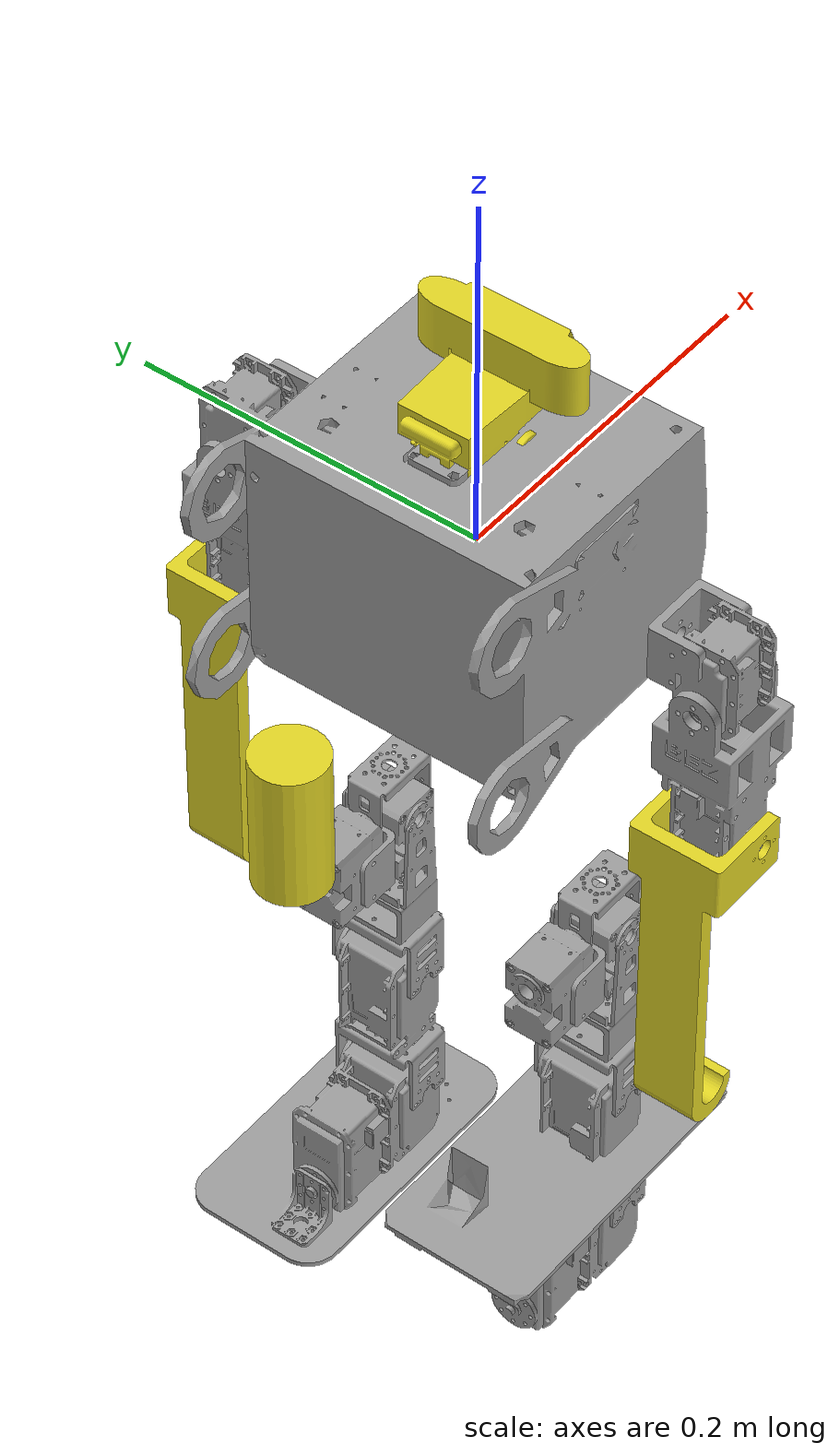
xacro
<?xml version="1.0" ?>
<robot name="bez2" xmlns:xacro="http://www.ros.org/wiki/xacro">
<xacro:include filename="$(find bez2_description)/urdf/parameters.xacro" />
<xacro:include filename="$(find bez2_description)/urdf/materials.xacro" />
<xacro:include filename="$(find bez2_description)/urdf/bez2.trans" />
<xacro:include filename="$(find bez2_description)/urdf/bez2.gazebo" />
<link name="torso">
  <inertial>
    <origin xyz="-2.6182166493521018e-05 0.0037391632790891283 -0.07310917852477573" rpy="0 0 0"/>
    <mass value="1.62191101903404"/>
    <inertia ixx="0.17522" iyy="0.126523" izz="0.127074" ixy="0.000499" iyz="0.000833" ixz="0.001818"/>
  </inertial>
  <visual>
    <origin xyz="0 0 0" rpy="0 0 0"/>
    <geometry>
      <mesh filename="package://bez2_description/meshes/base_link.stl" scale="0.001 0.001 0.001"/>
    </geometry>
    <material name="steel_satin"/>
  </visual>
  <collision name="collision">
      <origin rpy="0.00000 0.00000 0.00000" xyz="0.00154 0.00254 -0.07057"/>
      <geometry>
        <box size="0.14440 0.20843 0.19912"/>
      </geometry>
  </collision>
</link>
<link name="neck">
  <inertial>
    <origin xyz="2.1597541578072255e-08 -0.005416430173761932 0.014254502404740514" rpy="0 0 0"/>
    <mass value="0.015549664333897642"/>
    <inertia ixx="8e-06" iyy="3e-06" izz="6e-06" ixy="0.0" iyz="1e-06" ixz="-0.0"/>
  </inertial>
  <visual>
    <origin xyz="-0.009539 -0.002537 -0.03138" rpy="0 0 0"/>
    <geometry>
      <mesh filename="package://bez2_description/meshes/Head_Yaw_Assembly_v1_1.stl" scale="0.001 0.001 0.001"/>
    </geometry>
    <material name="plastic_matte_yellow"/>
  </visual>
  <collision>
    <origin rpy="0.00000 0.00000 0.00000" xyz="0.00000 0.00000 0.01900"/>
      <geometry>
        <box size="0.02200 0.05100 0.03800"/>
      </geometry>
  </collision>
</link>
<link name="head">
  <inertial>
    <origin xyz="-0.006768609392929565 0.018593066407664022 0.012723039586287177" rpy="0 0 0"/>
    <mass value="0.5407373847724953"/>
    <inertia ixx="0.000349" iyy="0.000378" izz="0.000259" ixy="-0.0" iyz="-4e-06" ixz="-8.1e-05"/>
  </inertial>
  <visual>
    <origin xyz="-0.009539 0.016963 -0.05638" rpy="0 0 0"/>
    <geometry>
      <mesh filename="package://bez2_description/meshes/Head_Pitch_Assembly_v4_1.stl" scale="0.001 0.001 0.001"/>
    </geometry>
    <material name="plastic_matte_yellow"/>
  </visual>
  <collision>
    <origin rpy="0.00000 0.00000 0.00000" xyz="-0.00950 0.01920 0.02340"/>
      <geometry>
        <box size="0.07120 0.09400 0.07530"/>
      </geometry>
  </collision>
</link>
<link name="left_shoulder">
  <inertial>
    <origin xyz="9.49688693072442e-05 0.025391120875814188 -0.00710009103373208" rpy="0 0 0"/>
    <mass value="0.172653501389095"/>
    <inertia ixx="0.000136" iyy="0.000137" izz="0.000116" ixy="0.0" iyz="1.8e-05" ixz="3e-06"/>
  </inertial>
  <visual>
    <origin xyz="-0.006539 -0.112237 0.00062" rpy="0 0 0"/>
    <geometry>
      <mesh filename="package://bez2_description/meshes/left_shoulder_v1_1.stl" scale="0.001 0.001 0.001"/>
    </geometry>
    <material name="steel_satin"/>
  </visual>
  <collision>
    <origin rpy="0.00000 0.00000 0.00000" xyz="0.00155 0.02365 -0.00750"/>
      <geometry>
        <box size="0.04360 0.04730 0.05100"/>
      </geometry>
  </collision>
</link>
<link name="left_bicep">
  <inertial>
    <origin xyz="-0.01931620093381984 0.0008375708488899958 -0.05229697639295136" rpy="0 0 0"/>
    <mass value="0.212120407883451"/>
    <inertia ixx="0.000601" iyy="0.000616" izz="0.000236" ixy="-0.0" iyz="1.3e-05" ixz="9e-06"/>
  </inertial>
  <visual>
    <origin xyz="-0.027039 -0.141737 0.02162" rpy="0 0 0"/>
    <geometry>
      <mesh filename="package://bez2_description/meshes/bicep_v1_1.stl" scale="0.001 0.001 0.001"/>
    </geometry>
    <material name="steel_satin"/>
  </visual>
  <collision>
    <origin rpy="0.00000 0.00000 0.00000" xyz="-0.02000 0.00127 -0.04274"/>
      <geometry>
        <box size="0.05000 0.04703 0.11202"/>
      </geometry>
  </collision>
</link>
<link name="left_forearm">
  <inertial>
    <origin xyz="-0.02629981291315407 -0.02054181327377705 -0.07127075071519198" rpy="0 0 0"/>
    <mass value="0.06415483406403591"/>
    <inertia ixx="0.000265" iyy="0.00026" izz="2e-05" ixy="-0.0" iyz="-0.0" ixz="-7e-06"/>
  </inertial>
  <visual>
    <origin xyz="-0.008351 -0.163675 0.10837" rpy="0 0 0"/>
    <geometry>
      <mesh filename="package://bez2_description/meshes/Bez1_forearm_v7_1.stl" scale="0.001 0.001 0.001"/>
    </geometry>
    <material name="plastic_matte_yellow"/>
  </visual>
  <collision>
    <origin rpy="0.00000 0.00000 0.00000" xyz="-0.01200 -0.02050 -0.08119"/>
      <geometry>
        <box size="0.04800 0.05300 0.18838"/>
      </geometry>
  </collision>
</link>

<link name="left_hip_side">
  <inertial>
    <origin xyz="2.104631423652248e-08 3.399354384647779e-07 -0.0077462434278427195" rpy="0 0 0"/>
    <mass value="0.120655957656288"/>
    <inertia ixx="3e-06" iyy="8e-06" izz="7e-06" ixy="-0.0" iyz="-0.0" ixz="0.0"/>
  </inertial>
  <visual>
    <origin xyz="-0.018839 -0.067737 0.20662" rpy="0 0 0"/>
    <geometry>
      <mesh filename="package://bez2_description/meshes/fr12_h101_v1_2.stl" scale="0.001 0.001 0.001"/>
    </geometry>
    <material name="steel_satin"/>
  </visual>
  <collision>
    <origin rpy="0.00000 0.00000 0.00000" xyz="0.00000 0.00000 -0.01525"/>
      <geometry>
        <box size="0.04100 0.02400 0.03050"/>
      </geometry>
  </collision>
</link>
<link name="left_hip_front">
<inertial>
  <origin xyz="0.0004996292549223533 0.0005421424160892835 -0.012131129108951588" rpy="0 0 0"/>
  <mass value="0.211645971103128"/>
  <inertia ixx="0.000195" iyy="0.000458" izz="0.000394" ixy="-8e-06" iyz="-1e-06" ixz="-2e-06"/>
</inertial>
<visual>
  <origin xyz="0.001661 -0.067737 0.23462" rpy="0 0 0"/>
  <geometry>
    <mesh filename="package://bez2_description/meshes/hip_v1_1.stl" scale="0.001 0.001 0.001"/>
  </geometry>
  <material name="steel_satin"/>
</visual>
<collision>
  <origin rpy="0.00000 0.00000 0.00000" xyz="-0.00199 0.00180 -0.01200"/>
      <geometry>
        <box size="0.07402 0.04100 0.04650"/>
      </geometry>
</collision>
</link>
<link name="left_thigh">
  <inertial>
    <origin xyz="2.1046150922715556e-08 -0.018793706652435974 -0.06540894904468947" rpy="0 0 0"/>
    <mass value="0.142301969468209"/>
    <inertia ixx="0.000159" iyy="0.000121" izz="6.9e-05" ixy="-0.0" iyz="1e-06" ixz="0.0"/>
  </inertial>
  <visual>
    <origin xyz="-0.01911 -0.088037 0.23462" rpy="0 0 0"/>
    <geometry>
      <mesh filename="package://bez2_description/meshes/thigh_v1_1.stl" scale="0.001 0.001 0.001"/>
    </geometry>
    <material name="steel_satin"/>
  </visual>
  <collision>
    <origin rpy="0.00000 0.00000 0.00000" xyz="0.00000 -0.01823 -0.05825"/>
      <geometry>
        <box size="0.03300 0.05100 0.12150"/>
      </geometry>
  </collision>
</link>
<link name="left_calve">
  <inertial>
    <origin xyz="0.00034959081321023905 -0.023268493362085793 -0.030853501915197812" rpy="0 0 0"/>
    <mass value="0.143723171211077"/>
    <inertia ixx="0.000176" iyy="0.00015" izz="6.2e-05" ixy="0.0" iyz="-2e-06" ixz="2e-06"/>
  </inertial>
  <visual>
    <origin xyz="-0.01911 -0.093306 0.35062" rpy="0 0 0"/>
    <geometry>
      <mesh filename="package://bez2_description/meshes/calf_v1_1.stl" scale="0.001 0.001 0.001"/>
    </geometry>
    <material name="steel_satin"/>
  </visual>
  <collision>
    <origin rpy="0.00000 0.00000 0.00000" xyz="-0.00005 -0.02225 -0.03850"/>
      <geometry>
        <box size="0.04030 0.05350 0.10500"/>
      </geometry>
  </collision>
</link>
<link name="left_ankle">
  <inertial>
    <origin xyz="-0.02065513049536576 -0.023057637545577894 -0.017838420955393897" rpy="0 0 0"/>
    <mass value="0.151468601936124"/>
    <inertia ixx="0.000102" iyy="0.000212" izz="0.000173" ixy="-1e-06" iyz="-2e-06" ixz="-1.7e-05"/>
  </inertial>
  <visual>
    <origin xyz="-0.02041 -0.093306 0.43862" rpy="0 0 0"/>
    <geometry>
      <mesh filename="package://bez2_description/meshes/ankle_v2_1.stl" scale="0.001 0.001 0.001"/>
    </geometry>
    <material name="steel_satin"/>
  </visual>
  <collision>
    <origin rpy="0.00000 0.00000 0.00000" xyz="-0.02445 -0.02050 -0.01800"/>
      <geometry>
        <box size="0.08910 0.05000 0.06398"/>
      </geometry>
  </collision>
</link>
<link name="left_foot">
  <inertial>
    <origin xyz="0.0476419808535605 0.018106431082562213 -0.01978200152059173" rpy="0 0 0"/>
    <mass value="0.16613521684361"/>
    <inertia ixx="0.000247" iyy="0.000905" izz="0.001142" ixy="-2.6e-05" iyz="5e-06" ixz="1.4e-05"/>
  </inertial>
  <visual>
    <origin xyz="0.04409 -0.069806 0.47462" rpy="0 0 0"/>
    <geometry>
      <mesh filename="package://bez2_description/meshes/left_foot_v2_1.stl" scale="0.001 0.001 0.001"/>
    </geometry>
    <material name="steel_satin"/>
  </visual>
  <collision>
    <origin rpy="0.00000 0.00000 0.00000" xyz="0.05150 0.01936 -0.00550"/>
      <geometry>
        <box size="0.17000 0.09000 0.03300"/>
      </geometry>
  </collision>
</link>

<link name="right_hip_side">
  <inertial>
    <origin xyz="2.1046314309380865e-08 3.3993543878396704e-07 -0.007746243427843552" rpy="0 0 0"/>
    <mass value="0.120655957656288"/>
    <inertia ixx="3e-06" iyy="8e-06" izz="7e-06" ixy="-0.0" iyz="-0.0" ixz="0.0"/>
  </inertial>
  <visual>
    <origin xyz="-0.018839 0.062663 0.20662" rpy="0 0 0"/>
    <geometry>
      <mesh filename="package://bez2_description/meshes/fr12_h101_v1_1.stl" scale="0.001 0.001 0.001"/>
    </geometry>
    <material name="steel_satin"/>
  </visual>
  <collision>
    <origin rpy="0.00000 0.00000 0.00000" xyz="0.00000 0.00000 -0.01525"/>
      <geometry>
        <box size="0.04100 0.02400 0.03050"/>
      </geometry>
  </collision>
</link>
<link name="right_hip_front">
  <inertial>
    <origin xyz="0.0004996292549223817 0.0005421424160894084 -0.01213112910895231" rpy="0 0 0"/>
    <mass value="0.211645971103128"/>
    <inertia ixx="0.000195" iyy="0.000458" izz="0.000394" ixy="-8e-06" iyz="-1e-06" ixz="-2e-06"/>
  </inertial>
  <visual>
    <origin xyz="0.001661 0.062663 0.23462" rpy="0 0 0"/>
    <geometry>
      <mesh filename="package://bez2_description/meshes/hip_v1_2.stl" scale="0.001 0.001 0.001"/>
    </geometry>
    <material name="steel_satin"/>
  </visual>
  <collision>
    <origin rpy="0.00000 0.00000 0.00000" xyz="-0.00199 0.00180 -0.01200"/>
      <geometry>
        <box size="0.07402 0.04100 0.04650"/>
      </geometry>
  </collision>
</link>
<link name="right_thigh">
  <inertial>
    <origin xyz="2.1046151002512836e-08 -0.018793706652437202 -0.0654089490446903" rpy="0 0 0"/>
    <mass value="0.142301969468209"/>
    <inertia ixx="0.000159" iyy="0.000121" izz="6.9e-05" ixy="-0.0" iyz="1e-06" ixz="0.0"/>
  </inertial>
  <visual>
    <origin xyz="-0.01911 0.042363 0.23462" rpy="0 0 0"/>
    <geometry>
      <mesh filename="package://bez2_description/meshes/thigh_v1_2.stl" scale="0.001 0.001 0.001"/>
    </geometry>
    <material name="steel_satin"/>
  </visual>
  <collision>
    <origin rpy="0.00000 0.00000 0.00000" xyz="0.00000 -0.01823 -0.05825"/>
      <geometry>
        <box size="0.03300 0.05100 0.12150"/>
      </geometry>
  </collision>
</link>
<link name="right_calve">
  <inertial>
    <origin xyz="0.0003495908132103466 -0.023268493362087077 -0.030853501915198367" rpy="0 0 0"/>
    <mass value="0.143723171211077"/>
    <inertia ixx="0.000176" iyy="0.00015" izz="6.2e-05" ixy="0.0" iyz="-2e-06" ixz="2e-06"/>
  </inertial>
  <visual>
    <origin xyz="-0.01911 0.037094 0.35062" rpy="0 0 0"/>
    <geometry>
      <mesh filename="package://bez2_description/meshes/calf_v1_2.stl" scale="0.001 0.001 0.001"/>
    </geometry>
    <material name="steel_satin"/>
  </visual>
  <collision>
    <origin rpy="0.00000 0.00000 0.00000" xyz="-0.00005 -0.02225 -0.03850"/>
      <geometry>
        <box size="0.04030 0.05350 0.10500"/>
      </geometry>
  </collision>
</link>
<link name="right_ankle">
  <inertial>
    <origin xyz="-0.020655130495365704 -0.023057637545579254 -0.017838420955394507" rpy="0 0 0"/>
    <mass value="0.151468601936124"/>
    <inertia ixx="0.000102" iyy="0.000212" izz="0.000173" ixy="-1e-06" iyz="-2e-06" ixz="-1.7e-05"/>
  </inertial>
  <visual>
    <origin xyz="-0.02041 0.037094 0.43862" rpy="0 0 0"/>
    <geometry>
      <mesh filename="package://bez2_description/meshes/ankle_v2_2.stl" scale="0.001 0.001 0.001"/>
    </geometry>
    <material name="steel_satin"/>
  </visual>
  <collision>
    <origin rpy="0.00000 0.00000 0.00000" xyz="-0.02445 -0.02050 -0.01800"/>
      <geometry>
        <box size="0.08910 0.05000 0.06398"/>
      </geometry>
  </collision>
</link>
<link name="right_foot">
  <inertial>
    <origin xyz="0.047641980853560625 -0.018107232571891542 -0.019782001520592507" rpy="0 0 0"/>
    <mass value="0.16613521684361"/>
    <inertia ixx="0.000247" iyy="0.000905" izz="0.001142" ixy="2.6e-05" iyz="-5e-06" ixz="1.4e-05"/>
  </inertial>
  <visual>
    <origin xyz="0.04409 0.060594 0.47462" rpy="0 0 0"/>
    <geometry>
      <mesh filename="package://bez2_description/meshes/right_foot_v2_1.stl" scale="0.001 0.001 0.001"/>
    </geometry>
    <material name="steel_satin"/>
  </visual>
  <collision>
    <origin rpy="0.00000 0.00000 0.00000" xyz="0.05150 -0.01936 -0.00550"/>
      <geometry>
        <box size="0.17000 0.09000 0.03300"/>
      </geometry>
  </collision>
</link>

<link name="right_shoulder">
  <inertial>
    <origin xyz="0.00042714569282304837 -0.025390436050570106 -0.007100091033732914" rpy="0 0 0"/>
    <mass value="0.172653501389095"/>
    <inertia ixx="0.000136" iyy="0.000137" izz="0.000116" ixy="1e-06" iyz="-1.8e-05" ixz="4e-06"/>
  </inertial>
  <visual>
    <origin xyz="-0.006539 0.107163 0.00062" rpy="0 0 0"/>
    <geometry>
      <mesh filename="package://bez2_description/meshes/right_shoulder_v2_1.stl" scale="0.001 0.001 0.001"/>
    </geometry>
    <material name="steel_satin"/>
  </visual>
  <collision>
    <origin rpy="0.00000 0.00000 0.00000" xyz="0.00168 -0.02365 -0.00750"/>
      <geometry>
        <box size="0.04435 0.04730 0.05100"/>
      </geometry>
  </collision>
</link>
<link name="right_bicep">
  <inertial>
    <origin xyz="-0.02068375587119517 -0.0008368909778958267 -0.05229697639295197" rpy="0 0 0"/>
    <mass value="0.212120407883451"/>
    <inertia ixx="0.000601" iyy="0.000616" izz="0.000236" ixy="-0.0" iyz="-1.3e-05" ixz="-9e-06"/>
  </inertial>
  <visual>
    <origin xyz="-0.027539 0.136663 0.02162" rpy="0 0 0"/>
    <geometry>
      <mesh filename="package://bez2_description/meshes/bicep_v1_2.stl" scale="0.001 0.001 0.001"/>
    </geometry>
    <material name="steel_satin"/>
  </visual>
  <collision>
    <origin rpy="0.00000 0.00000 0.00000" xyz="-0.02000 -0.00127 -0.04274"/>
      <geometry>
        <box size="0.05000 0.04703 0.11202"/>
      </geometry>
  </collision>
</link>
<link name="right_forearm">
  <inertial>
    <origin xyz="-0.026300599945598205 0.02045796215352269 -0.07127075071519248" rpy="0 0 0"/>
    <mass value="0.06415483406403591"/>
    <inertia ixx="0.000265" iyy="0.00026" izz="2e-05" ixy="-0.0" iyz="-0.0" ixz="-7e-06"/>
  </inertial>
  <visual>
    <origin xyz="-0.006227 0.1586 0.10837" rpy="0 0 0"/>
    <geometry>
      <mesh filename="package://bez2_description/meshes/Bez1_forearm_v7_2.stl" scale="0.001 0.001 0.001"/>
    </geometry>
    <material name="plastic_matte_yellow"/>
  </visual>
  <collision>
    <origin rpy="0.00000 0.00000 0.00000" xyz="-0.01200 0.02050 -0.08119"/>
      <geometry>
        <box size="0.04800 0.05300 0.18838"/>
      </geometry>
  </collision>
</link>

<joint name="head_yaw" type="revolute">
  <origin xyz="0.009539 0.002537 0.03138" rpy="0 0 0"/>
  <parent link="torso"/>
  <child link="neck"/>
  <axis xyz="0.0 0.0 -1.0"/>
  <dynamics damping="${XL430_DAMPING}" friction="${XL430_FRICTION}" />
          <limit effort="${XL430_TORQUE}" lower="-${PI/2}" upper="${PI/2}" velocity="${XL430_VELOCITY}"/>
</joint>
<joint name="head_pitch" type="revolute">
  <origin xyz="0.0 -0.0195 0.025" rpy="0 0 0"/>
  <parent link="neck"/>
  <child link="head"/>
  <axis xyz="0.0 1.0 0.0"/>
  <dynamics damping="${XL430_DAMPING}" friction="${XL430_FRICTION}" />
            <limit effort="${XL430_TORQUE}" lower="0" upper="${PI*2/4}" velocity="${XL430_VELOCITY}"/>
</joint>

<joint name="left_shoulder_pitch" type="revolute">
  <origin xyz="0.006539 0.112237 -0.00062" rpy="0 0 0"/>
  <parent link="torso"/>
  <child link="left_shoulder"/>
  <axis xyz="-0.0 -1.0 0.0"/>
  <dynamics damping="${MX28_DAMPING}" friction="${MX28_FRICTION}" />
<limit effort="${XM430_TORQUE}" lower="-${PI}" upper="${PI*5/4}" velocity="${XM430_VELOCITY}"/>
</joint>
<joint name="left_shoulder_roll" type="revolute">
  <origin xyz="0.0205 0.0295 -0.021" rpy="0 0 0"/>
  <parent link="left_shoulder"/>
  <child link="left_bicep"/>
  <axis xyz="1.0 -0.0 0.0"/>
    <dynamics damping="${MX28_DAMPING}" friction="${MX28_FRICTION}" />
                <limit effort="${MX28_TORQUE}" lower="0" upper="${PI/2}" velocity="${MX28_VELOCITY}"/>

</joint>
<joint name="left_elbow" type="revolute">
<origin xyz="-0.018688 0.021938 -0.08675" rpy="0 0 0"/>
<parent link="left_bicep"/>
<child link="left_forearm"/>
<axis xyz="-0.0 -1.0 -0.0"/>
  <dynamics damping="${MX28_DAMPING}" friction="${MX28_FRICTION}" />
              <limit effort="${MX28_TORQUE}" lower="0" upper="${PI}" velocity="${MX28_VELOCITY}"/>

</joint>

<joint name="left_hip_yaw" type="revolute">
<origin xyz="0.018839 0.067737 -0.20662" rpy="0 0 0"/>
<parent link="torso"/>
<child link="left_hip_side"/>
<axis xyz="0.0 0.0 -1.0"/>
  <dynamics damping="${XM430_DAMPING}" friction="${XM430_FRICTION}" />
<limit effort="${XM430_TORQUE}" lower="-1.309" upper="0.524" velocity="${XM430_VELOCITY}"/>
</joint>
<joint name="left_hip_roll" type="revolute">
<origin xyz="-0.0205 0.0 -0.028" rpy="0 0 0"/>
<parent link="left_hip_side"/>
<child link="left_hip_front"/>
<axis xyz="1.0 0.0 0.0"/>
  <dynamics damping="${XM430_DAMPING}" friction="${XM430_FRICTION}" />
          <limit effort="${XM430_TORQUE}" lower="-${PI/4}" upper="${PI/2}" velocity="${XM430_VELOCITY}"/>

</joint>
<joint name="left_hip_pitch" type="revolute">
<origin xyz="0.020771 0.0203 0.0" rpy="0 0 0"/>
<parent link="left_hip_front"/>
<child link="left_thigh"/>
<axis xyz="-0.0 -1.0 0.0"/>
    <dynamics damping="${XM430_DAMPING}" friction="${XM430_FRICTION}" />
            <limit effort="${XM430_TORQUE}" lower="-${PI/4}" upper="${PI*3/4}" velocity="${XM430_VELOCITY}"/>

</joint>
<joint name="left_knee" type="revolute">
  <origin xyz="0.0 0.005269 -0.116" rpy="0 0 0"/>
  <parent link="left_thigh"/>
  <child link="left_calve"/>
  <axis xyz="-0.0 -1.0 0.0"/>
    <dynamics damping="${MX64_DAMPING}" friction="${MX64_FRICTION}" />
            <limit effort="${MX64_TORQUE}" lower="-2.793" upper="0" velocity="${MX64_VELOCITY}"/>

</joint>
<joint name="left_ankle_pitch" type="revolute">
  <origin xyz="0.0013 0.0 -0.088" rpy="0 0 0"/>
  <parent link="left_calve"/>
  <child link="left_ankle"/>
  <axis xyz="-0.0 -1.0 0.0"/>
    <dynamics damping="${MX64_DAMPING}" friction="${MX64_FRICTION}" />
            <limit effort="${MX64_TORQUE}" lower="-${PI/4}" upper="${PI/2}" velocity="${MX64_VELOCITY}"/>

</joint>
<joint name="left_ankle_roll" type="revolute">
<origin xyz="-0.0645 -0.0235 -0.036" rpy="0 0 0"/>
<parent link="left_ankle"/>
<child link="left_foot"/>
<axis xyz="1.0 0.0 0.0"/>
    <dynamics damping="${MX64_DAMPING}" friction="${MX64_FRICTION}" />
            <limit effort="${MX64_TORQUE}" lower="-${PI/4}" upper="${PI/4}" velocity="${MX64_VELOCITY}"/>

</joint>

<joint name="right_shoulder_pitch" type="revolute">
  <origin xyz="0.006539 -0.107163 -0.00062" rpy="0 0 0"/>
  <parent link="torso"/>
  <child link="right_shoulder"/>
  <axis xyz="0.0 -1.0 -0.0"/>
    <dynamics damping="${MX28_DAMPING}" friction="${MX28_FRICTION}" />
              <limit effort="${XM430_TORQUE}" lower="-${PI}" upper="${PI*5/4}" velocity="${XM430_VELOCITY}"/>

</joint>
<joint name="right_shoulder_roll" type="revolute">
  <origin xyz="0.021 -0.0295 -0.021" rpy="0 0 0"/>
  <parent link="right_shoulder"/>
  <child link="right_bicep"/>
  <axis xyz="-1.0 0.0 0.0"/>
    <dynamics damping="${MX28_DAMPING}" friction="${MX28_FRICTION}" />
                <limit effort="${MX28_TORQUE}" lower="0" upper="${PI/2}" velocity="${MX28_VELOCITY}"/>

</joint>
<joint name="right_elbow" type="revolute">
  <origin xyz="-0.021312 -0.021937 -0.08675" rpy="0 0 0"/>
  <parent link="right_bicep"/>
  <child link="right_forearm"/>
  <axis xyz="0.0 -1.0 0.0"/>
    <dynamics damping="${MX28_DAMPING}" friction="${MX28_FRICTION}" />
                <limit effort="${MX28_TORQUE}" lower="0" upper="${PI}" velocity="${MX28_VELOCITY}"/>

</joint>

<joint name="right_hip_yaw" type="revolute">
  <origin xyz="0.018839 -0.062663 -0.20662" rpy="0 0 0"/>
  <parent link="torso"/>
  <child link="right_hip_side"/>
  <axis xyz="-0.0 -0.0 1.0"/>
    <dynamics damping="${XM430_DAMPING}" friction="${XM430_FRICTION}" />
  <limit effort="${XM430_TORQUE}" lower="-1.309" upper="0.524" velocity="${XM430_VELOCITY}"/>

</joint>
<joint name="right_hip_roll" type="revolute">
  <origin xyz="-0.0205 0.0 -0.028" rpy="0 0 0"/>
  <parent link="right_hip_side"/>
  <child link="right_hip_front"/>
  <axis xyz="-1.0 0.0 0.0"/>
    <dynamics damping="${XM430_DAMPING}" friction="${XM430_FRICTION}" />
            <limit effort="${XM430_TORQUE}" lower="-${PI/4}" upper="${PI/2}" velocity="${XM430_VELOCITY}"/>

</joint>
<joint name="right_hip_pitch" type="revolute">
  <origin xyz="0.020771 0.0203 0.0" rpy="0 0 0"/>
  <parent link="right_hip_front"/>
  <child link="right_thigh"/>
  <axis xyz="-0.0 -1.0 0.0"/>
    <dynamics damping="${XM430_DAMPING}" friction="${XM430_FRICTION}" />
            <limit effort="${XM430_TORQUE}" lower="-${PI/4}" upper="${PI*3/4}" velocity="${XM430_VELOCITY}"/>

</joint>
<joint name="right_knee" type="revolute">
  <origin xyz="0.0 0.005269 -0.116" rpy="0 0 0"/>
  <parent link="right_thigh"/>
  <child link="right_calve"/>
  <axis xyz="-0.0 -1.0 0.0"/>
    <dynamics damping="${MX64_DAMPING}" friction="${MX64_FRICTION}" />
            <limit effort="${MX64_TORQUE}" lower="-2.793" upper="0" velocity="${MX64_VELOCITY}"/>

</joint>
<joint name="right_ankle_pitch" type="revolute">
  <origin xyz="0.0013 0.0 -0.088" rpy="0 0 0"/>
  <parent link="right_calve"/>
  <child link="right_ankle"/>
  <axis xyz="-0.0 -1.0 0.0"/>
    <dynamics damping="${MX64_DAMPING}" friction="${MX64_FRICTION}" />
            <limit effort="${MX64_TORQUE}" lower="-${PI/4}" upper="${PI/2}" velocity="${MX64_VELOCITY}"/>

</joint>
<joint name="right_ankle_roll" type="revolute">
  <origin xyz="-0.0645 -0.0235 -0.036" rpy="0 0 0"/>
  <parent link="right_ankle"/>
  <child link="right_foot"/>
  <axis xyz="-1.0 0.0 0.0"/>
    <dynamics damping="${MX64_DAMPING}" friction="${MX64_FRICTION}" />
            <limit effort="${MX64_TORQUE}" lower="-${PI/4}" upper="${PI/4}" velocity="${MX64_VELOCITY}"/>

</joint>

 <link name="imu_link">
    <inertial>
      <mass value="0.01"/>
      <origin rpy="0  0  0" xyz="0 0 0"/>
      <inertia ixx="1e-9" ixy="0" ixz="0" iyy="1e-9" iyz="0" izz="1e-9"/>
    </inertial>
  </link>

<joint name="torso_cylinder_joint" type="fixed">
  <parent link="torso"/>
  <child link="torso_cylinder"/>
  <origin rpy="0 0 0" xyz="0.0 0 0.000"/>
  <axis xyz="0 0 0"/>
</joint>
<link name="torso_cylinder">
  <inertial>
    <origin xyz="-0.026300599945598205 0.02045796215352269 -0.07127075071519248" rpy="0 0 0"/>
    <mass value="0.00001"/>
    <inertia ixx="0.00001" iyy="0.00001" izz="0.00001" ixy="-0.0" iyz="-0.0" ixz="-0"/>
  </inertial>
  <visual>
    <origin xyz="-0.14 0 -0.07" rpy="0 0 0"/>
    <geometry>
      <cylinder radius="0.02" length="0.08" />
    </geometry>
    <material name="plastic_matte_yellow"/>
  </visual>
  <collision>
    <origin xyz="-0.14 0 -0.07" rpy="0 0 0"/>
    <geometry>
      <cylinder radius="0.02" length="0.08" />
    </geometry>
  </collision>
</link>

  <joint name="torso_imu" type="fixed">
    <parent link="torso"/>
    <child link="imu_link"/>
    <origin rpy="0 0 0" xyz="0.0 0 0.000"/>
    <axis xyz="0 0 0"/>
  </joint>
  <gazebo reference="imu_link">
    <gravity>true</gravity>
    <sensor name="imu_sensor" type="imu">
      <always_on>true</always_on>
      <update_rate>100</update_rate>
      <visualize>true</visualize>
      <topic>__default_topic__</topic>
      <plugin filename="libgazebo_ros_imu_sensor.so" name="imu_plugin">
        <topicName>imu_raw</topicName>
        <bodyName>imu_link</bodyName>
        <updateRateHZ>50.0</updateRateHZ>
        <gaussianNoise>0.0</gaussianNoise>
        <xyzOffset>0 0 0</xyzOffset>
        <rpyOffset>0 0 0</rpyOffset>
        <frameName>imu_link</frameName>
      </plugin>
      <pose>0 0 0 0 0 0</pose>
    </sensor>
  </gazebo>
  <gazebo reference="imu_link">
    <kp>1000000000000000.0</kp>
    <kd>10000000000000.0</kd>
    <mu1>0.2</mu1>
    <mu2>0.2</mu2>
  </gazebo>

</robot>

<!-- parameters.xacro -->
<robot name="bez2" xmlns:xacro="http://www.ros.org/wiki/xacro">

    <xacro:property name="PI" value="3.1415926535897931"/>

    <xacro:property name="JOINT_KP" value="1e15"/>
    <xacro:property name="JOINT_KD" value="1e13"/>
    <xacro:property name="JOINT_MU1" value="0.2"/>
    <xacro:property name="JOINT_MU2" value="0.2"/>
    <xacro:property name="FOREARM_MU1" value="0.2"/>
    <xacro:property name="FOREARM_MU2" value="0.2"/>

    <xacro:property name="JOINT_FRICTION" value="0.1"/>
    <xacro:property name="JOINT_DAMPING" value="0.01"/>
<!--TODO figure out why damping and friction mess with it so much-->
    <xacro:property name="MX28_TORQUE" value="2.5"/>
    <xacro:property name="MX28_VELOCITY" value="5.76"/>
    <xacro:property name="MX28_DAMPING" value="${JOINT_DAMPING}"/>
    <xacro:property name="MX28_FRICTION" value="${JOINT_FRICTION}"/>
    <xacro:property name="MX64_TORQUE" value="6.0"/>
    <xacro:property name="MX64_VELOCITY" value="6.6"/>
    <xacro:property name="MX64_DAMPING" value="${JOINT_DAMPING}"/>
    <xacro:property name="MX64_FRICTION" value="${JOINT_FRICTION}"/>
    <xacro:property name="XM430_TORQUE" value="4.1"/>
    <xacro:property name="XM430_VELOCITY" value="4.82"/>
    <xacro:property name="XM430_DAMPING" value="${JOINT_DAMPING}"/>
    <xacro:property name="XM430_FRICTION" value="${JOINT_FRICTION}"/>
    <xacro:property name="XL430_TORQUE" value="1.5"/>
    <xacro:property name="XL430_VELOCITY" value="6.39"/>
    <xacro:property name="XL430_DAMPING" value="${JOINT_DAMPING}"/>
    <xacro:property name="XL430_FRICTION" value="${JOINT_FRICTION}"/>

    <xacro:property name="y_offset" value="0.21571129429326383"/>
    <xacro:property name="z_offset" value="0.05556097822952673"/>
    <xacro:property name="angle_offset" value="1.57"/>

    <material name="white">
        <color rgba="1.0 1.0 1.0 1.0"/>
    </material>
    <material name="black">
        <color rgba="0.0 0.0 0.0 1.0"/>
    </material>
    <material name="silver">
        <color rgba="0.7 0.7 0.7 1.0"/>
    </material>
    <material name="yellow">
        <color rgba="0.9 0.9 0.0 1.0"/>
    </material>
    <material name="red">
        <color rgba="0.7 0.0 0.0 1.0"/>
    </material>
    <material name="green">
        <color rgba="0.0 0.7 0.0 1.0"/>
    </material>
    <material name="blue">
        <color rgba="0.0 0.0 0.7 1.0"/>
    </material>
    <material name="purple">
        <color rgba="0.7 0.0 0.7 1.0"/>
    </material>
    <material name="cyan">
        <color rgba="0.0 0.7 0.7 1.0"/>
    </material>
</robot>

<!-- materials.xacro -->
<robot name="bez2" xmlns:xacro="http://www.ros.org/wiki/xacro" >

<material name="silver_default">
  <color rgba="0.700 0.700 0.700 1.000"/>
</material>
<material name="aluminum_satin">
  <color rgba="0.9607843137254902 0.9607843137254902 0.9647058823529412 1.0"/>
</material>
<material name="steel_satin">
  <color rgba="0.6274509803921569 0.6274509803921569 0.6274509803921569 1.0"/>
</material>
<material name="abs_white">
  <color rgba="0.36470588235294116 0.4392156862745098 0.5098039215686274 1.0"/>
</material>

</robot>

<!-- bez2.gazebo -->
<robot name="bez2" xmlns:xacro="http://www.ros.org/wiki/xacro" >

<xacro:property name="body_color" value="Gazebo/Silver" />

<gazebo>
  <plugin name="control" filename="libgazebo_ros_control.so"/>
</gazebo>
<gazebo reference="base_link">
  <material>${body_color}</material>
  <mu1>0.2</mu1>
  <mu2>0.2</mu2>
  <selfCollide>true</selfCollide>
  <gravity>true</gravity>
</gazebo>

<gazebo reference="fr12_h101_v1_1">
  <material>${body_color}</material>
  <mu1>0.2</mu1>
  <mu2>0.2</mu2>
  <selfCollide>true</selfCollide>
</gazebo>

<gazebo reference="fr12_h101_v1_2">
  <material>${body_color}</material>
  <mu1>0.2</mu1>
  <mu2>0.2</mu2>
  <selfCollide>true</selfCollide>
</gazebo>

<gazebo reference="hip_v1_1">
  <material>${body_color}</material>
  <mu1>0.2</mu1>
  <mu2>0.2</mu2>
  <selfCollide>true</selfCollide>
</gazebo>

<gazebo reference="hip_v1_2">
  <material>${body_color}</material>
  <mu1>0.2</mu1>
  <mu2>0.2</mu2>
  <selfCollide>true</selfCollide>
</gazebo>

<gazebo reference="thigh_v1_1">
  <material>${body_color}</material>
  <mu1>0.2</mu1>
  <mu2>0.2</mu2>
  <selfCollide>true</selfCollide>
</gazebo>

<gazebo reference="thigh_v1_2">
  <material>${body_color}</material>
  <mu1>0.2</mu1>
  <mu2>0.2</mu2>
  <selfCollide>true</selfCollide>
</gazebo>

<gazebo reference="calf_v1_1">
  <material>${body_color}</material>
  <mu1>0.2</mu1>
  <mu2>0.2</mu2>
  <selfCollide>true</selfCollide>
</gazebo>

<gazebo reference="calf_v1_2">
  <material>${body_color}</material>
  <mu1>0.2</mu1>
  <mu2>0.2</mu2>
  <selfCollide>true</selfCollide>
</gazebo>

<gazebo reference="ankle_v2_1">
  <material>${body_color}</material>
  <mu1>0.2</mu1>
  <mu2>0.2</mu2>
  <selfCollide>true</selfCollide>
</gazebo>

<gazebo reference="ankle_v2_2">
  <material>${body_color}</material>
  <mu1>0.2</mu1>
  <mu2>0.2</mu2>
  <selfCollide>true</selfCollide>
</gazebo>

<gazebo reference="right_foot_v2_1">
  <material>${body_color}</material>
  <mu1>0.2</mu1>
  <mu2>0.2</mu2>
  <selfCollide>true</selfCollide>
</gazebo>

<gazebo reference="left_foot_v2_1">
  <material>${body_color}</material>
  <mu1>0.2</mu1>
  <mu2>0.2</mu2>
  <selfCollide>true</selfCollide>
</gazebo>

<gazebo reference="Head_Yaw_Assembly_v1_1">
  <material>${body_color}</material>
  <mu1>0.2</mu1>
  <mu2>0.2</mu2>
  <selfCollide>true</selfCollide>
</gazebo>

<gazebo reference="Head_Pitch_Assembly_v4_1">
  <material>${body_color}</material>
  <mu1>0.2</mu1>
  <mu2>0.2</mu2>
  <selfCollide>true</selfCollide>
</gazebo>

<gazebo reference="right_shoulder_v2_1">
  <material>${body_color}</material>
  <mu1>0.2</mu1>
  <mu2>0.2</mu2>
  <selfCollide>true</selfCollide>
</gazebo>

<gazebo reference="left_shoulder_v1_1">
  <material>${body_color}</material>
  <mu1>0.2</mu1>
  <mu2>0.2</mu2>
  <selfCollide>true</selfCollide>
</gazebo>

<gazebo reference="bicep_v1_1">
  <material>${body_color}</material>
  <mu1>0.2</mu1>
  <mu2>0.2</mu2>
  <selfCollide>true</selfCollide>
</gazebo>

<gazebo reference="bicep_v1_2">
  <material>${body_color}</material>
  <mu1>0.2</mu1>
  <mu2>0.2</mu2>
  <selfCollide>true</selfCollide>
</gazebo>

<gazebo reference="Bez1_forearm_v7_1">
  <material>${body_color}</material>
  <mu1>0.2</mu1>
  <mu2>0.2</mu2>
  <selfCollide>true</selfCollide>
</gazebo>

<gazebo reference="Bez1_forearm_v7_2">
  <material>${body_color}</material>
  <mu1>0.2</mu1>
  <mu2>0.2</mu2>
  <selfCollide>true</selfCollide>
</gazebo>

</robot>
